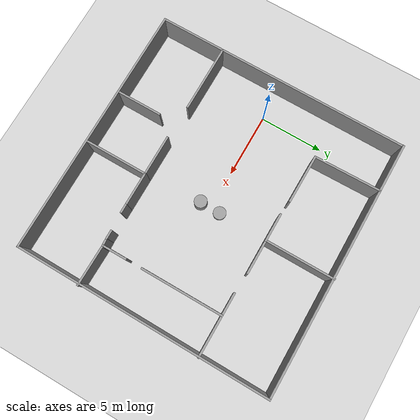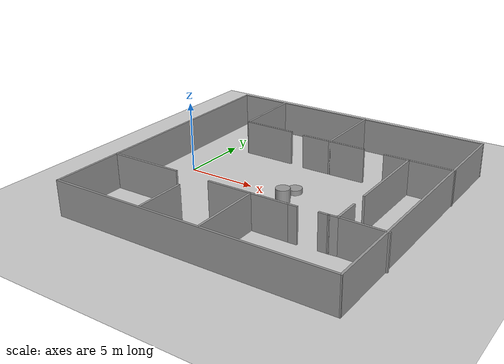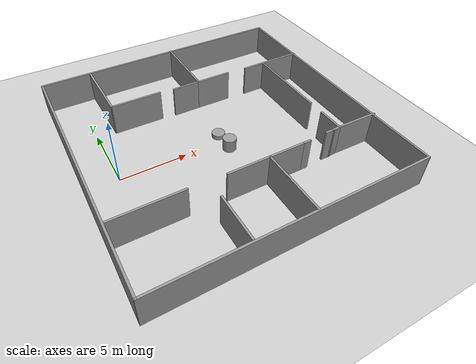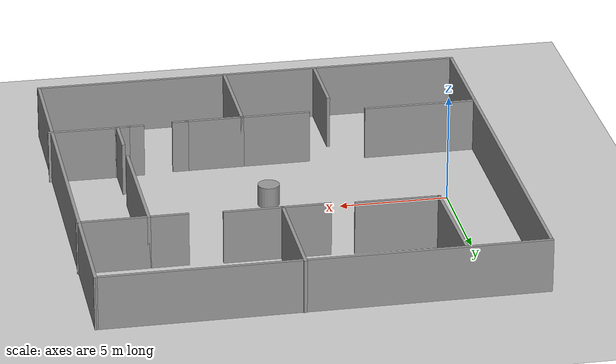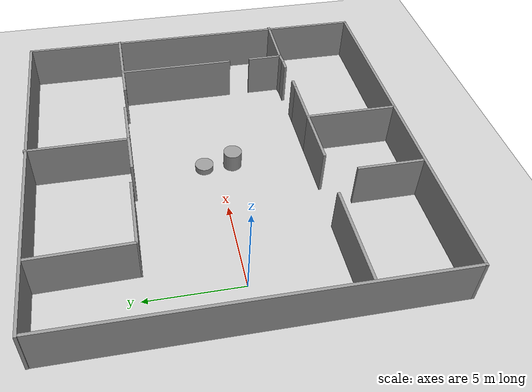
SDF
<sdf version="1.7">
 <world name="default">
  <light name="sun" type="directional">
   <pose>0 0 10 0 -0 0</pose>
   <diffuse>0.8 0.8 0.8 1</diffuse>
   <specular>0.2 0.2 0.2 1</specular>
   <attenuation>
    <range>1000</range>
    <constant>0.9</constant>
    <linear>0.01</linear>
    <quadratic>0.001</quadratic>
   </attenuation>
   <direction>-0.5 0.1 -0.9</direction>
   <spot><inner_angle>0</inner_angle><outer_angle>0</outer_angle><falloff>0</falloff></spot>
  </light>
  <model name="ground_plane">
   <static>1</static>
   <link name="link">
    <collision name="collision">
     <geometry><plane><normal>0 0 1</normal><size>100 100</size></plane></geometry>
     <surface><friction><ode><mu>100</mu><mu2>50</mu2></ode></friction></surface>
    </collision>
    <visual name="visual">
     <cast_shadows>0</cast_shadows>
     <geometry><plane><normal>0 0 1</normal><size>100 100</size></plane></geometry>
     <material>
      <script><uri>file://media/materials/scripts/gazebo.material</uri><name>Gazebo/Grey</name></script>
     </material>
    </visual>
   </link>
  </model>
  <gravity>0 0 -9.8</gravity>
  <magnetic_field>6e-06 2.3e-05 -4.2e-05</magnetic_field>
  <atmosphere type="adiabatic"/>
  <physics type="ode">
   <max_step_size>0.001</max_step_size>
   <real_time_factor>1</real_time_factor>
   <real_time_update_rate>1000</real_time_update_rate>
  </physics>
  <scene><ambient>0.4 0.4 0.4 1</ambient><background>0.7 0.7 0.7 1</background><shadows>1</shadows></scene>
  <audio><device>default</device></audio>
  <spherical_coordinates>
   <surface_model>EARTH_WGS84</surface_model>
   <latitude_deg>0</latitude_deg>
   <longitude_deg>0</longitude_deg>
   <elevation>0</elevation>
   <heading_deg>0</heading_deg>
  </spherical_coordinates>
  <model name="Untitled">
   <pose>7.60244 0.015984 0 0 0 -1.57039</pose>
   <link name="Wall_1">
    <collision name="Wall_1_Collision">
     <geometry><box><size>20.15 0.15 2.5</size></box></geometry>
     <pose>0 0 1.25 0 -0 0</pose>
    </collision>
    <visual name="Wall_1_Visual">
     <pose>0 0 1.25 0 -0 0</pose>
     <geometry><box><size>20.15 0.15 2.5</size></box></geometry>
     <material>
      <script><uri>file://media/materials/scripts/gazebo.material</uri><name>Gazebo/Grey</name></script>
      <ambient>1 1 1 1</ambient>
     </material>
     <meta><layer>0</layer></meta>
    </visual>
    <pose>-9.98123 -0.009558 0 0 -0 -1.5708</pose>
   </link>
   <link name="Wall_10">
    <collision name="Wall_10_Collision">
     <geometry><box><size>5 0.15 2.5</size></box></geometry>
     <pose>0 0 1.25 0 -0 0</pose>
    </collision>
    <visual name="Wall_10_Visual">
     <pose>0 0 1.25 0 -0 0</pose>
     <geometry><box><size>5 0.15 2.5</size></box></geometry>
     <material>
      <script><uri>file://media/materials/scripts/gazebo.material</uri><name>Gazebo/Grey</name></script>
      <ambient>1 1 1 1</ambient>
     </material>
     <meta><layer>0</layer></meta>
    </visual>
    <pose>-4.57579 7.58295 0 0 -0 -1.5708</pose>
   </link>
   <link name="Wall_12">
    <collision name="Wall_12_Collision">
     <geometry><box><size>5.5 0.15 2.5</size></box></geometry>
     <pose>0 0 1.25 0 -0 0</pose>
    </collision>
    <visual name="Wall_12_Visual">
     <pose>0 0 1.25 0 -0 0</pose>
     <geometry><box><size>5.5 0.15 2.5</size></box></geometry>
     <material>
      <script><uri>file://media/materials/scripts/gazebo.material</uri><name>Gazebo/Grey</name></script>
      <ambient>1 1 1 1</ambient>
     </material>
     <meta><layer>0</layer></meta>
    </visual>
    <pose>-7.35961 0.89449 0 0 -0 0</pose>
   </link>
   <link name="Wall_13">
    <collision name="Wall_13_Collision">
     <geometry><box><size>2.75 0.15 2.5</size></box></geometry>
     <pose>0 0 1.25 0 -0 0</pose>
    </collision>
    <visual name="Wall_13_Visual">
     <pose>0 0 1.25 0 -0 0</pose>
     <geometry><box><size>2.75 0.15 2.5</size></box></geometry>
     <material>
      <script><uri>file://media/materials/scripts/gazebo.material</uri><name>Gazebo/Grey</name></script>
      <ambient>1 1 1 1</ambient>
     </material>
     <meta><layer>0</layer></meta>
    </visual>
    <pose>-4.68461 2.19449 0 0 -0 1.5708</pose>
   </link>
   <link name="Wall_24">
    <collision name="Wall_24_Collision">
     <geometry><box><size>2.75 0.15 2.5</size></box></geometry>
     <pose>0 0 1.25 0 -0 0</pose>
    </collision>
    <visual name="Wall_24_Visual">
     <pose>0 0 1.25 0 -0 0</pose>
     <geometry><box><size>2.75 0.15 2.5</size></box></geometry>
     <material>
      <script><uri>file://media/materials/scripts/gazebo.material</uri><name>Gazebo/Grey</name></script>
      <ambient>1 1 1 1</ambient>
     </material>
     <meta><layer>0</layer></meta>
    </visual>
    <pose>5.0928 2.3239 0 0 -0 -1.5708</pose>
   </link>
   <link name="Wall_25">
    <collision name="Wall_25_Collision">
     <geometry><box><size>5 0.15 2.5</size></box></geometry>
     <pose>0 0 1.25 0 -0 0</pose>
    </collision>
    <visual name="Wall_25_Visual">
     <pose>0 0 1.25 0 -0 0</pose>
     <geometry><box><size>5 0.15 2.5</size></box></geometry>
     <material>
      <script><uri>file://media/materials/scripts/gazebo.material</uri><name>Gazebo/Grey</name></script>
      <ambient>1 1 1 1</ambient>
     </material>
     <meta><layer>0</layer></meta>
    </visual>
    <pose>7.5178 1.0239 0 0 -0 0</pose>
   </link>
   <link name="Wall_27">
    <collision name="Wall_27_Collision">
     <geometry><box><size>6.5 0.15 2.5</size></box></geometry>
     <pose>0 0 1.25 0 -0 0</pose>
    </collision>
    <visual name="Wall_27_Visual">
     <pose>0 0 1.25 0 -0 0</pose>
     <geometry><box><size>6.5 0.15 2.5</size></box></geometry>
     <material>
      <script><uri>file://media/materials/scripts/gazebo.material</uri><name>Gazebo/Grey</name></script>
      <ambient>1 1 1 1</ambient>
     </material>
     <meta><layer>0</layer></meta>
    </visual>
    <pose>-1.40079 6.86219 0 0 -0 0</pose>
   </link>
   <link name="Wall_3">
    <collision name="Wall_3_Collision">
     <geometry><box><size>20 0.15 2.5</size></box></geometry>
     <pose>0 0 1.25 0 -0 0</pose>
    </collision>
    <visual name="Wall_3_Visual">
     <pose>0 0 1.25 0 -0 0</pose>
     <geometry><box><size>20 0.15 2.5</size></box></geometry>
     <material>
      <script><uri>file://media/materials/scripts/gazebo.material</uri><name>Gazebo/Grey</name></script>
      <ambient>1 1 1 1</ambient>
     </material>
     <meta><layer>0</layer></meta>
    </visual>
    <pose>0.109112 -9.99374 0 0 -0 0</pose>
   </link>
   <link name="Wall_33">
    <collision name="Wall_33_Collision">
     <geometry><box><size>0.75 0.15 2.5</size></box></geometry>
     <pose>0 0 1.25 0 -0 0</pose>
    </collision>
    <visual name="Wall_33_Visual">
     <pose>0 0 1.25 0 -0 0</pose>
     <geometry><box><size>0.75 0.15 2.5</size></box></geometry>
     <material>
      <script><uri>file://media/materials/scripts/gazebo.material</uri><name>Gazebo/Grey</name></script>
      <ambient>1 1 1 1</ambient>
     </material>
     <meta><layer>0</layer></meta>
    </visual>
    <pose>5.0928 3.9239 0 0 -0 1.5708</pose>
   </link>
   <link name="Wall_37">
    <collision name="Wall_37_Collision">
     <geometry><box><size>3.25 0.15 2.5</size></box></geometry>
     <pose>0 0 1.25 0 -0 0</pose>
    </collision>
    <visual name="Wall_37_Visual">
     <pose>0 0 1.25 0 -0 0</pose>
     <geometry><box><size>3.25 0.15 2.5</size></box></geometry>
     <material>
      <script><uri>file://media/materials/scripts/gazebo.material</uri><name>Gazebo/Grey</name></script>
      <ambient>1 1 1 1</ambient>
     </material>
     <meta><layer>0</layer></meta>
    </visual>
    <pose>5.0928 -0.526099 0 0 -0 -1.5708</pose>
   </link>
   <link name="Wall_39">
    <collision name="Wall_39_Collision">
     <geometry><box><size>5.25 0.15 2.5</size></box></geometry>
     <pose>0 0 1.25 0 -0 0</pose>
    </collision>
    <visual name="Wall_39_Visual">
     <pose>0 0 1.25 0 -0 0</pose>
     <geometry><box><size>5.25 0.15 2.5</size></box></geometry>
     <material>
      <script><uri>file://media/materials/scripts/gazebo.material</uri><name>Gazebo/Grey</name></script>
      <ambient>1 1 1 1</ambient>
     </material>
     <meta><layer>0</layer></meta>
    </visual>
    <pose>5.00028 -7.38063 0 0 -0 1.5708</pose>
   </link>
   <link name="Wall_41">
    <collision name="Wall_41_Collision">
     <geometry><box><size>3.5 0.15 2.5</size></box></geometry>
     <pose>0 0 1.25 0 -0 0</pose>
    </collision>
    <visual name="Wall_41_Visual">
     <pose>0 0 1.25 0 -0 0</pose>
     <geometry><box><size>3.5 0.15 2.5</size></box></geometry>
     <material>
      <script><uri>file://media/materials/scripts/gazebo.material</uri><name>Gazebo/Grey</name></script>
      <ambient>1 1 1 1</ambient>
     </material>
     <meta><layer>0</layer></meta>
    </visual>
    <pose>8.2019 -3.31528 0 0 -0 0</pose>
   </link>
   <link name="Wall_43">
    <collision name="Wall_43_Collision">
     <geometry><box><size>5.25 0.15 2.5</size></box></geometry>
     <pose>0 0 1.25 0 -0 0</pose>
    </collision>
    <visual name="Wall_43_Visual">
     <pose>0 0 1.25 0 -0 0</pose>
     <geometry><box><size>5.25 0.15 2.5</size></box></geometry>
     <material>
      <script><uri>file://media/materials/scripts/gazebo.material</uri><name>Gazebo/Grey</name></script>
      <ambient>1 1 1 1</ambient>
     </material>
     <meta><layer>0</layer></meta>
    </visual>
    <pose>-7.39209 -6.18348 0 0 -0 0.01814</pose>
   </link>
   <link name="Wall_46">
    <collision name="Wall_46_Collision">
     <geometry><box><size>2.25 0.15 2.5</size></box></geometry>
     <pose>0 0 1.25 0 -0 0</pose>
    </collision>
    <visual name="Wall_46_Visual">
     <pose>0 0 1.25 0 -0 0</pose>
     <geometry><box><size>2.25 0.15 2.5</size></box></geometry>
     <material>
      <script><uri>file://media/materials/scripts/gazebo.material</uri><name>Gazebo/Grey</name></script>
      <ambient>1 1 1 1</ambient>
     </material>
     <meta><layer>0</layer></meta>
    </visual>
    <pose>-4.68461 -0.15551 0 0 -0 -1.5708</pose>
   </link>
   <link name="Wall_48">
    <collision name="Wall_48_Collision">
     <geometry><box><size>3.89732 0.15 2.5</size></box></geometry>
     <pose>0 0 1.25 0 -0 0</pose>
    </collision>
    <visual name="Wall_48_Visual">
     <pose>0 0 1.25 0 -0 0</pose>
     <geometry><box><size>3.89732 0.15 2.5</size></box></geometry>
     <material>
      <script><uri>file://media/materials/scripts/gazebo.material</uri><name>Gazebo/Grey</name></script>
      <ambient>1 1 1 1</ambient>
     </material>
     <meta><layer>0</layer></meta>
    </visual>
    <pose>-4.82459 -4.26364 0 0 -0 -1.58014</pose>
   </link>
   <link name="Wall_50">
    <collision name="Wall_50_Collision">
     <geometry><box><size>3.25034 0.15 2.5</size></box></geometry>
     <pose>0 0 1.25 0 -0 0</pose>
    </collision>
    <visual name="Wall_50_Visual">
     <pose>0 0 1.25 0 -0 0</pose>
     <geometry><box><size>3.25034 0.15 2.5</size></box></geometry>
     <material>
      <script><uri>file://media/materials/scripts/gazebo.material</uri><name>Gazebo/Grey</name></script>
      <ambient>1 1 1 1</ambient>
     </material>
     <meta><layer>0</layer></meta>
    </visual>
    <pose>4.97715 8.45845 0 0 -0 1.55587</pose>
   </link>
   <link name="Wall_52">
    <collision name="Wall_52_Collision">
     <geometry><box><size>0.751781 0.15 2.5</size></box></geometry>
     <pose>0 0 1.25 0 -0 0</pose>
    </collision>
    <visual name="Wall_52_Visual">
     <pose>0 0 1.25 0 -0 0</pose>
     <geometry><box><size>0.751781 0.15 2.5</size></box></geometry>
     <material>
      <script><uri>file://media/materials/scripts/gazebo.material</uri><name>Gazebo/Grey</name></script>
      <ambient>1 1 1 1</ambient>
     </material>
     <meta><layer>0</layer></meta>
    </visual>
    <pose>4.97715 6.60845 0 0 -0 -1.49385</pose>
   </link>
   <link name="Wall_53">
    <collision name="Wall_53_Collision">
     <geometry><box><size>0.75 0.15 2.5</size></box></geometry>
     <pose>0 0 1.25 0 -0 0</pose>
    </collision>
    <visual name="Wall_53_Visual">
     <pose>0 0 1.25 0 -0 0</pose>
     <geometry><box><size>0.75 0.15 2.5</size></box></geometry>
     <material>
      <script><uri>file://media/materials/scripts/gazebo.material</uri><name>Gazebo/Grey</name></script>
      <ambient>1 1 1 1</ambient>
     </material>
     <meta><layer>0</layer></meta>
    </visual>
    <pose>5.00028 6.00845 0 0 -0 -1.5708</pose>
   </link>
   <link name="Wall_57">
    <collision name="Wall_57_Collision">
     <geometry><box><size>2 0.15 2.5</size></box></geometry>
     <pose>0 0 1.25 0 -0 0</pose>
    </collision>
    <visual name="Wall_57_Visual">
     <pose>0 0 1.25 0 -0 0</pose>
     <geometry><box><size>2 0.15 2.5</size></box></geometry>
     <material>
      <script><uri>file://media/materials/scripts/gazebo.material</uri><name>Gazebo/Grey</name></script>
      <ambient>1 1 1 1</ambient>
     </material>
     <meta><layer>0</layer></meta>
    </visual>
    <pose>4.02902 6.86219 0 0 -0 3.14159</pose>
   </link>
   <link name="Wall_6">
    <collision name="Wall_6_Collision">
     <geometry><box><size>20 0.15 2.5</size></box></geometry>
     <pose>0 0 1.25 0 -0 0</pose>
    </collision>
    <visual name="Wall_6_Visual">
     <pose>0 0 1.25 0 -0 0</pose>
     <geometry><box><size>20 0.15 2.5</size></box></geometry>
     <material>
      <script><uri>file://media/materials/scripts/gazebo.material</uri><name>Gazebo/Grey</name></script>
      <ambient>1 1 1 1</ambient>
     </material>
     <meta><layer>0</layer></meta>
    </visual>
    <pose>10.0341 -0.06874 0 0 -0 1.5708</pose>
   </link>
   <link name="Wall_8">
    <collision name="Wall_8_Collision">
     <geometry><box><size>20.1658 0.15 2.5</size></box></geometry>
     <pose>0 0 1.25 0 -0 0</pose>
    </collision>
    <visual name="Wall_8_Visual">
     <pose>0 0 1.25 0 -0 0</pose>
     <geometry><box><size>20.1658 0.15 2.5</size></box></geometry>
     <material>
      <script><uri>file://media/materials/scripts/gazebo.material</uri><name>Gazebo/Grey</name></script>
      <ambient>1 1 1 1</ambient>
     </material>
     <meta><layer>0</layer></meta>
    </visual>
    <pose>0.026443 9.92335 0 0 -0 -0.006704</pose>
   </link>
   <static>1</static>
  </model>
  <model name="unit_cylinder">
   <pose>8.0977 0.772891 0.177838 0 -0 0</pose>
   <link name="link">
    <inertial>
     <mass>1</mass>
     <inertia><ixx>0.145833</ixx><ixy>0</ixy><ixz>0</ixz><iyy>0.145833</iyy><iyz>0</iyz><izz>0.125</izz></inertia>
    </inertial>
    <collision name="collision">
     <geometry><cylinder><radius>0.5</radius><length>0.355693</length></cylinder></geometry>
    </collision>
    <visual name="visual">
     <geometry><cylinder><radius>0.5</radius><length>0.355693</length></cylinder></geometry>
     <material>
      <script><name>Gazebo/Grey</name><uri>file://media/materials/scripts/gazebo.material</uri></script>
     </material>
    </visual>
   </link>
  </model>
  <model name="unit_cylinder_0">
   <pose>8.143 -0.811476 0.499998 3e-06 -3e-06 0</pose>
   <link name="link">
    <inertial>
     <mass>1</mass>
     <inertia><ixx>0.145833</ixx><ixy>0</ixy><ixz>0</ixz><iyy>0.145833</iyy><iyz>0</iyz><izz>0.125</izz></inertia>
    </inertial>
    <collision name="collision">
     <geometry><cylinder><radius>0.5</radius><length>1</length></cylinder></geometry>
    </collision>
    <visual name="visual">
     <geometry><cylinder><radius>0.5</radius><length>1</length></cylinder></geometry>
     <material>
      <script><name>Gazebo/Grey</name><uri>file://media/materials/scripts/gazebo.material</uri></script>
     </material>
    </visual>
   </link>
  </model>
 </world>
</sdf>
